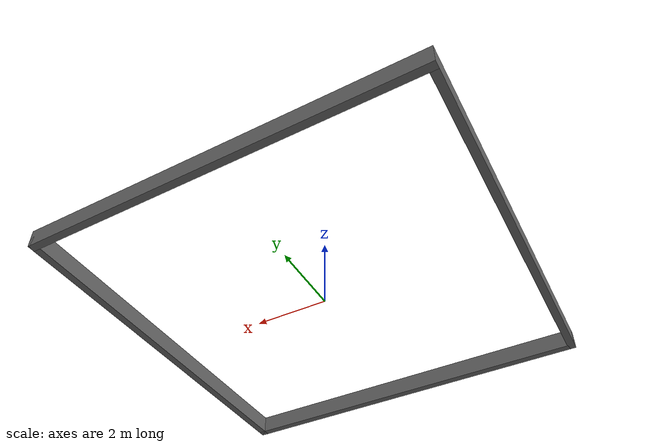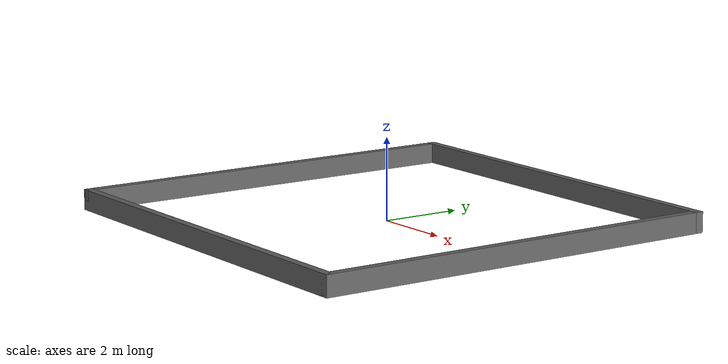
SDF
<?xml version="1.0" ?>
<sdf version="1.7">
  <model name="perimeter_wall">
    <static>true</static>

    <link name="front_wall">
      <pose>0 5.1 0.25 0 0 0</pose>
      <collision name="collision">
        <geometry>
          <box>
            <size>10.4 0.2 0.5</size>
          </box>
        </geometry>
      </collision>
      <visual name="visual">
        <geometry>
          <box>
            <size>10.4 0.2 0.5</size>
          </box>
        </geometry>
        <material>
          <ambient>0.4 0.4 0.4 1</ambient>
          <diffuse>0.4 0.4 0.4 1</diffuse>
          <specular>0.1 0.1 0.1 1</specular>
        </material>
      </visual>
    </link>

    <link name="back_wall">
      <pose>0 -5.1 0.25 0 0 0</pose>
      <collision name="collision">
        <geometry>
          <box>
            <size>10.4 0.2 0.5</size>
          </box>
        </geometry>
      </collision>
      <visual name="visual">
        <geometry>
          <box>
            <size>10.4 0.2 0.5</size>
          </box>
        </geometry>
        <material>
          <ambient>0.4 0.4 0.4 1</ambient>
          <diffuse>0.4 0.4 0.4 1</diffuse>
          <specular>0.1 0.1 0.1 1</specular>
        </material>
      </visual>
    </link>

    <link name="left_wall">
      <pose>-5.1 0 0.25 0 0 1.5708</pose>
      <collision name="collision">
        <geometry>
          <box>
            <size>10.4 0.2 0.5</size>
          </box>
        </geometry>
      </collision>
      <visual name="visual">
        <geometry>
          <box>
            <size>10.4 0.2 0.5</size>
          </box>
        </geometry>
        <material>
          <ambient>0.4 0.4 0.4 1</ambient>
          <diffuse>0.4 0.4 0.4 1</diffuse>
          <specular>0.1 0.1 0.1 1</specular>
        </material>
      </visual>
    </link>

    <link name="right_wall">
      <pose>5.1 0 0.25 0 0 1.5708</pose>
      <collision name="collision">
        <geometry>
          <box>
            <size>10.4 0.2 0.5</size>
          </box>
        </geometry>
      </collision>
      <visual name="visual">
        <geometry>
          <box>
            <size>10.4 0.2 0.5</size>
          </box>
        </geometry>
        <material>
          <ambient>0.4 0.4 0.4 1</ambient>
          <diffuse>0.4 0.4 0.4 1</diffuse>
          <specular>0.1 0.1 0.1 1</specular>
        </material>
      </visual>
    </link>
  </model>
</sdf>
